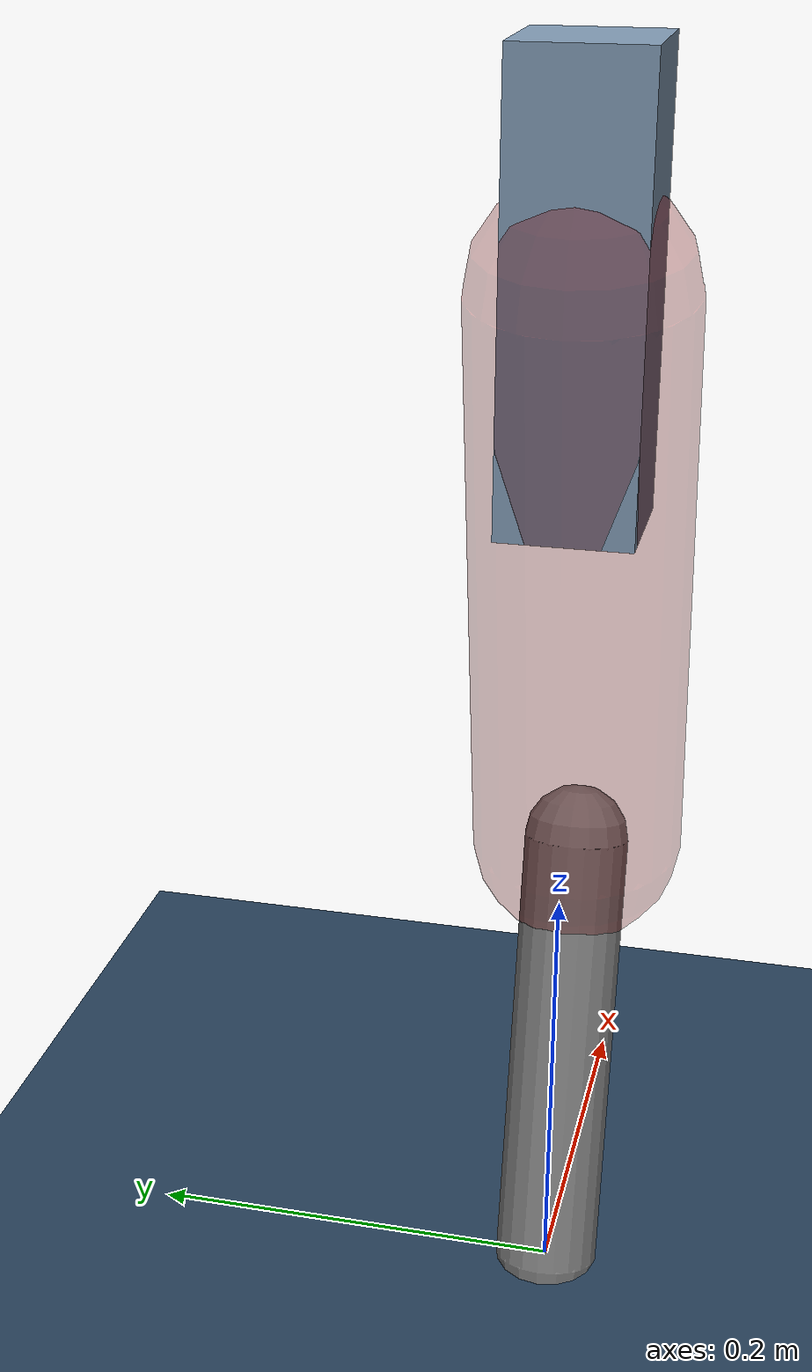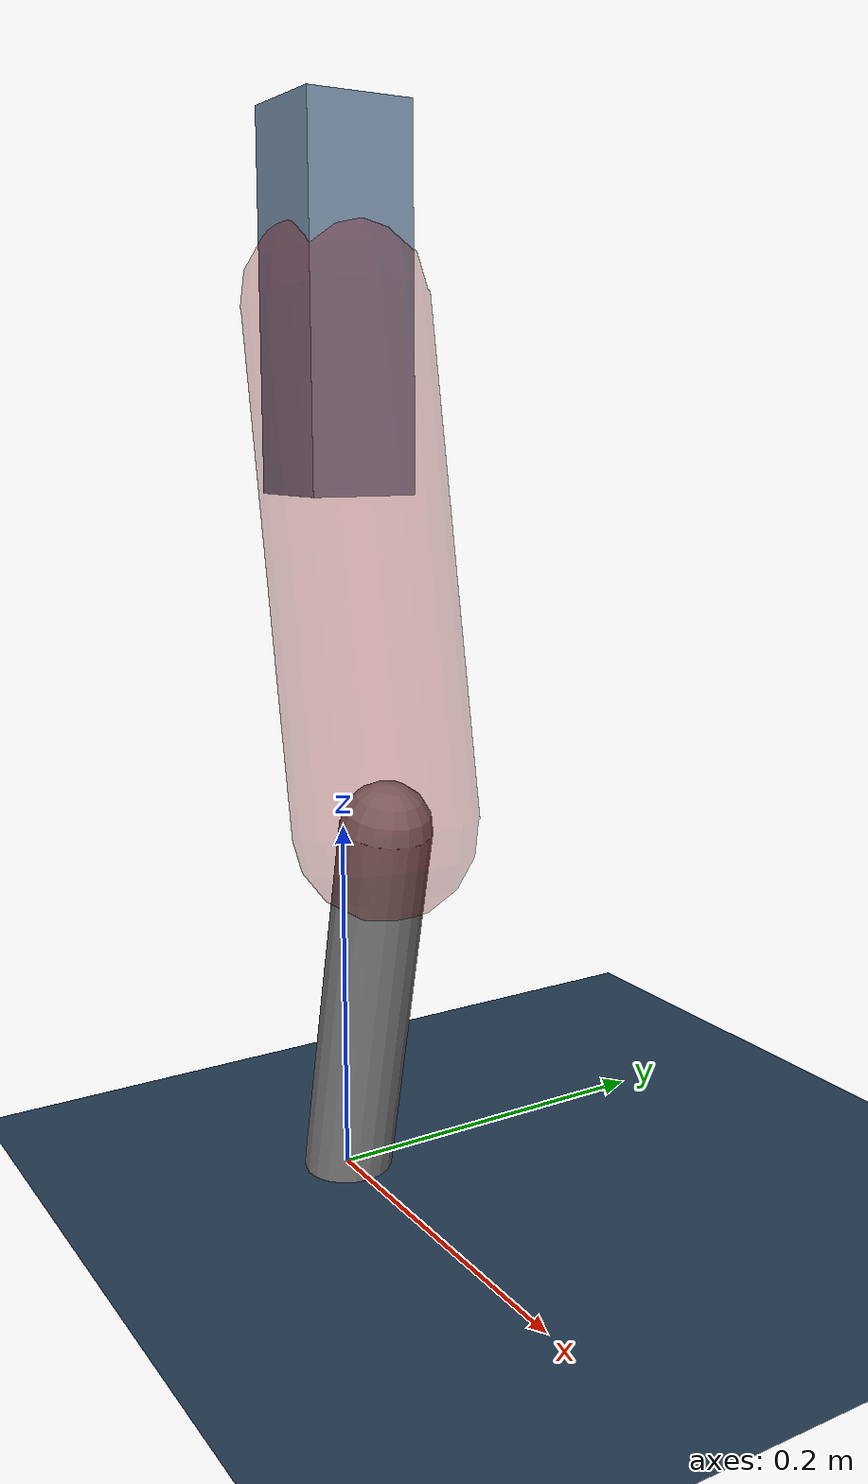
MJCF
<mujoco model="Hopper2D">
	<compiler inertiafromgeom="true" angle="radian" />
	<option timestep="0.001" integrator="implicit" cone="elliptic" solver="Newton" tolerance="1e-10" />

	<default>
		<geom contype="1" conaffinity="1" condim="3" friction="2 0.005 0.0001" solref="0.005 1" />
		<joint limited="true" damping="0.1" />
	</default>

	<asset>
		<texture name="skybox" type="skybox" builtin="gradient" rgb1=".4 .6 .8" rgb2="0 0 0" width="800" height="800" />
		<texture name="grid" type="2d" builtin="checker" rgb1=".1 .2 .3" rgb2=".2 .3 .4" width="300" height="300" mark="edge" markrgb=".2 .3 .4" />
		<material name="ground" texture="grid" texrepeat="1 1" texuniform="true" reflectance="0.1" />
		<material name="leg" rgba="0.5 0.6 0.7 1" />
	</asset>

	<worldbody>

		<geom name="floor" type="plane" size="5 5 0.25" material="ground" />

		<light directional="false" diffuse="0.8 0.8 0.8" specular="0.3 0.3 0.3" pos="0 0 2" dir="0 0 -1" />
		<light mode="targetbodycom" target="base" directional="false" diffuse="0.8 0.8 0.8" specular="0.3 0.3 0.3" pos="0 0 2" dir="0 0 -1" />

		<camera name="fixed" pos="0 -2 1" xyaxes="1 0 0 0 0 1" />
		<camera name="tracking" mode="trackcom" pos="0 -3 1" />

		<body name="root" pos="0 0 0.4843858515264606">
			<joint name="slide_x" type="slide" axis="1 0 0" range="-100 100" />
			<joint name="slide_z" type="slide" axis="0 0 1" range="0 10" />

			<body name="base" pos="0 0 0">
				<geom name="torso" type="box" size="0.03 0.03 0.1" mass="2.074" material="leg" />

				<body name="link1" pos="0 0 0" euler="0 1.39318976291498 0">
					<joint type="hinge" axis="0 -1 0" pos="0 0 0" name="hinge1" limited="true" range="-3.14 3.14" stiffness="0" damping="0.1" />
					<geom name="thigh" type="capsule" fromto="0 0 0 0.2777493399271701 0 0" size="0.05" rgba="0.5 0 0 0.3" mass="0.9291482838106422" />

					<body name="link2" pos="0.2777493399271701 0 0" euler="0 0.406103562130743 0">
						<joint type="hinge" axis="0 -1 0" pos="0 0 0" name="hinge2" limited="true" range="-3.14 3.14" stiffness="0" damping="0.1" />
						<geom name="shank" type="capsule" fromto="0 0 0 0.21663651159929048 0 0" size="0.025" mass="0.41487286043936145" />

					</body>
				</body>
			</body>
		</body>
	</worldbody>

	<actuator>
		<motor name="torque1" joint="hinge1" ctrlrange="-58.194287761275824 58.194287761275824" ctrllimited="true" gear="1" />
		<motor name="torque2" joint="hinge2" ctrlrange="-102.67224347710409 102.67224347710409" ctrllimited="true" gear="1" />
	</actuator>
</mujoco>
